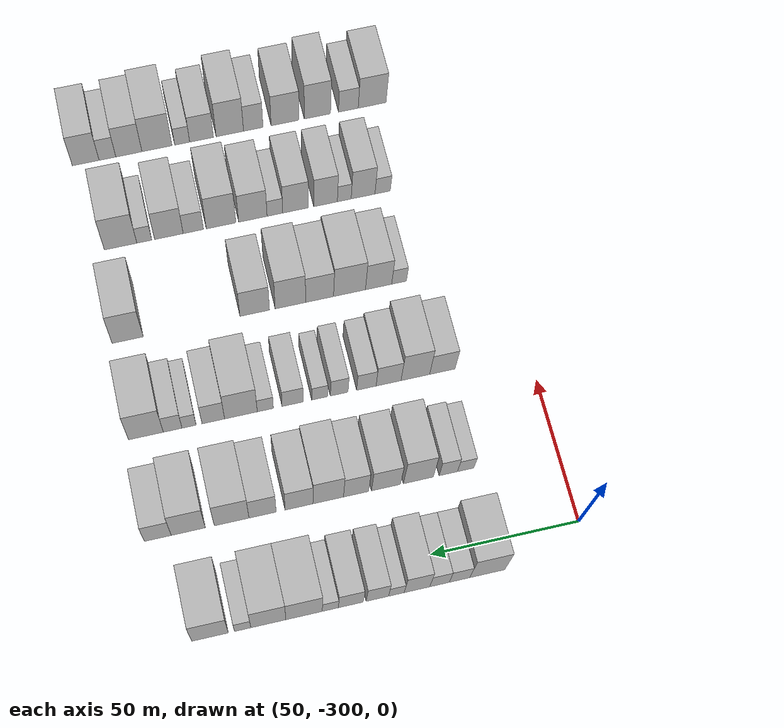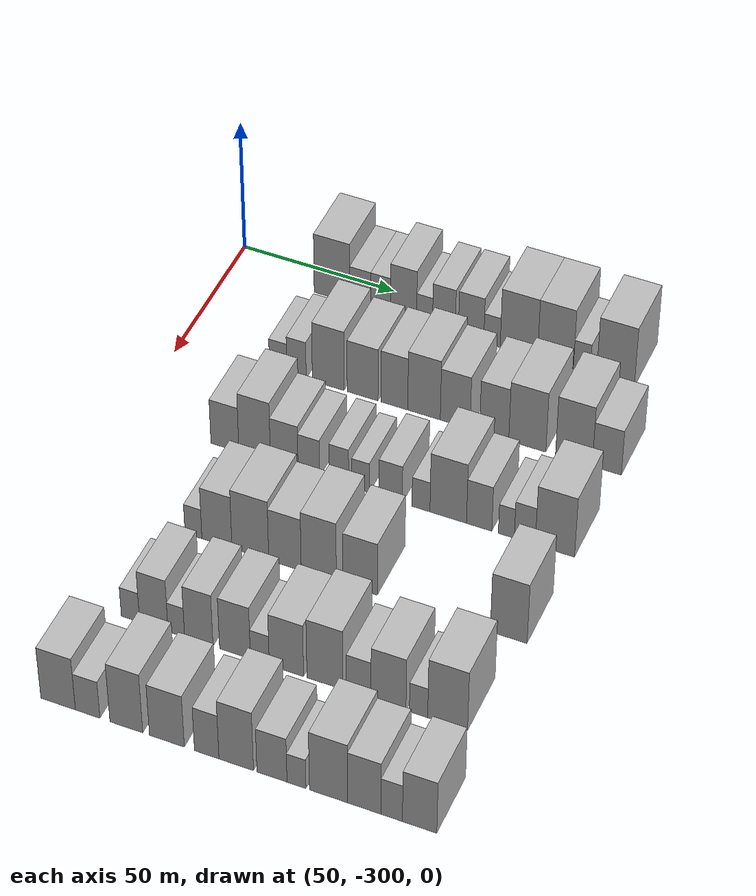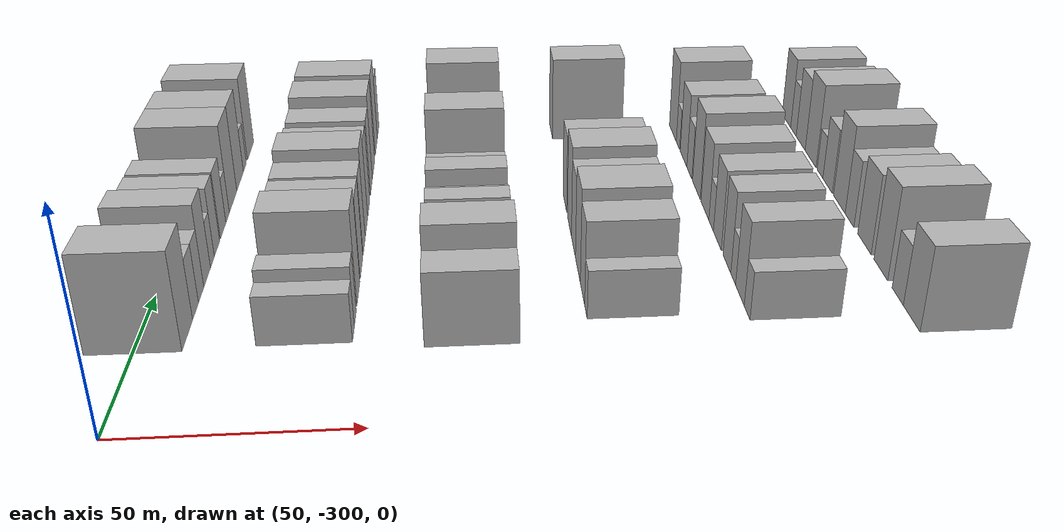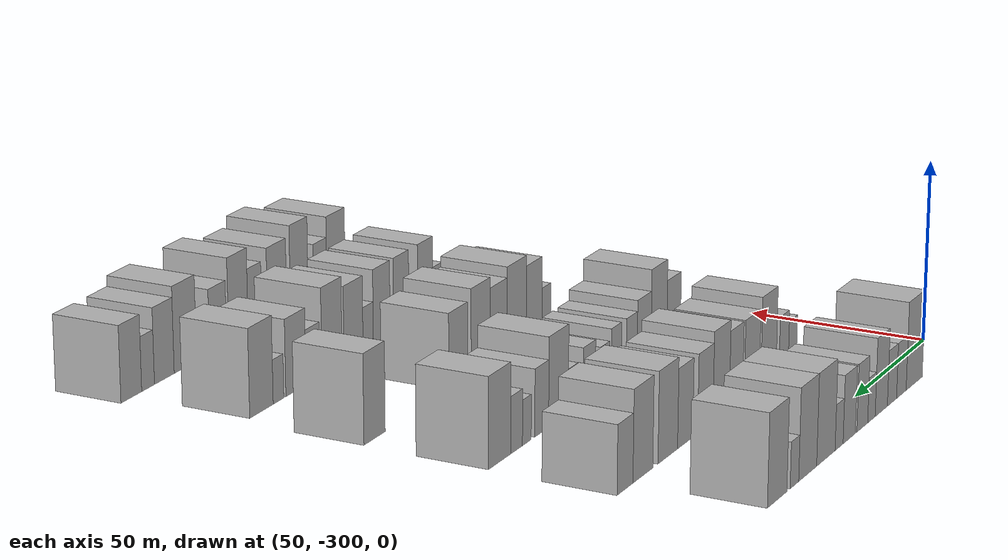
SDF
<sdf version="1.6">
 <world name="default">
  <model name="building_35">
   <static>1</static>
   <pose>50.0000 -266.3294 0 0.000000 0.000000 0.000000</pose>
   <link name="link">
    <pose>0 0 12.00 0 0 0</pose>
    <collision name="collision"><geometry><box><size>20.0000 11.7447 24.0000</size></box></geometry></collision>
    <visual name="visual">
     <cast_shadows>0</cast_shadows>
     <geometry><box><size>20.0000 11.7447 24.0000</size></box></geometry>
     <material>
      <script>
       <uri>model://HANNAS_wall/materials/scripts</uri>
       <uri>model://HANNAS_wall/materials/textures</uri>
       <name>vrc/HANNAS_wall</name>
      </script>
     </material>
    </visual>
   </link>
  </model>
  <model name="building_36">
   <static>1</static>
   <pose>50.0000 -257.0287 0 0.000000 0.000000 0.000000</pose>
   <link name="link">
    <pose>0 0 7.50 0 0 0</pose>
    <collision name="collision"><geometry><box><size>20.0000 6.8566 15.0000</size></box></geometry></collision>
    <visual name="visual">
     <cast_shadows>0</cast_shadows>
     <geometry><box><size>20.0000 6.8566 15.0000</size></box></geometry>
     <material>
      <script>
       <uri>model://HANNAS_wall/materials/scripts</uri>
       <uri>model://HANNAS_wall/materials/textures</uri>
       <name>vrc/HANNAS_wall</name>
      </script>
     </material>
    </visual>
   </link>
  </model>
  <model name="building_37">
   <static>1</static>
   <pose>50.0000 -250.3490 0 0.000000 0.000000 0.000000</pose>
   <link name="link">
    <pose>0 0 7.50 0 0 0</pose>
    <collision name="collision"><geometry><box><size>20.0000 6.5029 15.0000</size></box></geometry></collision>
    <visual name="visual">
     <cast_shadows>0</cast_shadows>
     <geometry><box><size>20.0000 6.5029 15.0000</size></box></geometry>
     <material>
      <script>
       <uri>model://HANNAS_wall/materials/scripts</uri>
       <uri>model://HANNAS_wall/materials/textures</uri>
       <name>vrc/HANNAS_wall</name>
      </script>
     </material>
    </visual>
   </link>
  </model>
  <model name="building_38">
   <static>1</static>
   <pose>50.0000 -242.8320 0 0.000000 0.000000 0.000000</pose>
   <link name="link">
    <pose>0 0 10.50 0 0 0</pose>
    <collision name="collision"><geometry><box><size>20.0000 8.5311 21.0000</size></box></geometry></collision>
    <visual name="visual">
     <cast_shadows>0</cast_shadows>
     <geometry><box><size>20.0000 8.5311 21.0000</size></box></geometry>
     <material>
      <script>
       <uri>model://HANNAS_wall/materials/scripts</uri>
       <uri>model://HANNAS_wall/materials/textures</uri>
       <name>vrc/HANNAS_wall</name>
      </script>
     </material>
    </visual>
   </link>
  </model>
  <model name="building_39">
   <static>1</static>
   <pose>50.0000 -235.9867 0 0.000000 0.000000 0.000000</pose>
   <link name="link">
    <pose>0 0 6.00 0 0 0</pose>
    <collision name="collision"><geometry><box><size>20.0000 5.1596 12.0000</size></box></geometry></collision>
    <visual name="visual">
     <cast_shadows>0</cast_shadows>
     <geometry><box><size>20.0000 5.1596 12.0000</size></box></geometry>
     <material>
      <script>
       <uri>model://HANNAS_wall/materials/scripts</uri>
       <uri>model://HANNAS_wall/materials/textures</uri>
       <name>vrc/HANNAS_wall</name>
      </script>
     </material>
    </visual>
   </link>
  </model>
  <model name="building_40">
   <static>1</static>
   <pose>50.0000 -229.7110 0 0.000000 0.000000 0.000000</pose>
   <link name="link">
    <pose>0 0 9.00 0 0 0</pose>
    <collision name="collision"><geometry><box><size>20.0000 7.3917 18.0000</size></box></geometry></collision>
    <visual name="visual">
     <cast_shadows>0</cast_shadows>
     <geometry><box><size>20.0000 7.3917 18.0000</size></box></geometry>
     <material>
      <script>
       <uri>model://HANNAS_wall/materials/scripts</uri>
       <uri>model://HANNAS_wall/materials/textures</uri>
       <name>vrc/HANNAS_wall</name>
      </script>
     </material>
    </visual>
   </link>
  </model>
  <model name="building_41">
   <static>1</static>
   <pose>50.0000 -220.9175 0 0.000000 0.000000 0.000000</pose>
   <link name="link">
    <pose>0 0 9.00 0 0 0</pose>
    <collision name="collision"><geometry><box><size>20.0000 8.1954 18.0000</size></box></geometry></collision>
    <visual name="visual">
     <cast_shadows>0</cast_shadows>
     <geometry><box><size>20.0000 8.1954 18.0000</size></box></geometry>
     <material>
      <script>
       <uri>model://HANNAS_wall/materials/scripts</uri>
       <uri>model://HANNAS_wall/materials/textures</uri>
       <name>vrc/HANNAS_wall</name>
      </script>
     </material>
    </visual>
   </link>
  </model>
  <model name="building_42">
   <static>1</static>
   <pose>50.0000 -214.1759 0 0.000000 0.000000 0.000000</pose>
   <link name="link">
    <pose>0 0 6.00 0 0 0</pose>
    <collision name="collision"><geometry><box><size>20.0000 5.2878 12.0000</size></box></geometry></collision>
    <visual name="visual">
     <cast_shadows>0</cast_shadows>
     <geometry><box><size>20.0000 5.2878 12.0000</size></box></geometry>
     <material>
      <script>
       <uri>model://HANNAS_wall/materials/scripts</uri>
       <uri>model://HANNAS_wall/materials/textures</uri>
       <name>vrc/HANNAS_wall</name>
      </script>
     </material>
    </visual>
   </link>
  </model>
  <model name="building_43">
   <static>1</static>
   <pose>50.0000 -205.5564 0 0.000000 0.000000 0.000000</pose>
   <link name="link">
    <pose>0 0 12.00 0 0 0</pose>
    <collision name="collision"><geometry><box><size>20.0000 11.9513 24.0000</size></box></geometry></collision>
    <visual name="visual">
     <cast_shadows>0</cast_shadows>
     <geometry><box><size>20.0000 11.9513 24.0000</size></box></geometry>
     <material>
      <script>
       <uri>model://HANNAS_wall/materials/scripts</uri>
       <uri>model://HANNAS_wall/materials/textures</uri>
       <name>vrc/HANNAS_wall</name>
      </script>
     </material>
    </visual>
   </link>
  </model>
  <model name="building_44">
   <static>1</static>
   <pose>50.0000 -193.8797 0 0.000000 0.000000 0.000000</pose>
   <link name="link">
    <pose>0 0 12.00 0 0 0</pose>
    <collision name="collision"><geometry><box><size>20.0000 11.4021 24.0000</size></box></geometry></collision>
    <visual name="visual">
     <cast_shadows>0</cast_shadows>
     <geometry><box><size>20.0000 11.4021 24.0000</size></box></geometry>
     <material>
      <script>
       <uri>model://HANNAS_wall/materials/scripts</uri>
       <uri>model://HANNAS_wall/materials/textures</uri>
       <name>vrc/HANNAS_wall</name>
      </script>
     </material>
    </visual>
   </link>
  </model>
  <model name="building_45">
   <static>1</static>
   <pose>50.0000 -185.5075 0 0.000000 0.000000 0.000000</pose>
   <link name="link">
    <pose>0 0 6.00 0 0 0</pose>
    <collision name="collision"><geometry><box><size>20.0000 5.3423 12.0000</size></box></geometry></collision>
    <visual name="visual">
     <cast_shadows>0</cast_shadows>
     <geometry><box><size>20.0000 5.3423 12.0000</size></box></geometry>
     <material>
      <script>
       <uri>model://HANNAS_wall/materials/scripts</uri>
       <uri>model://HANNAS_wall/materials/textures</uri>
       <name>vrc/HANNAS_wall</name>
      </script>
     </material>
    </visual>
   </link>
  </model>
  <model name="building_46">
   <static>1</static>
   <pose>50.0000 -174.8966 0 0.000000 0.000000 0.000000</pose>
   <link name="link">
    <pose>0 0 12.00 0 0 0</pose>
    <collision name="collision"><geometry><box><size>20.0000 11.8794 24.0000</size></box></geometry></collision>
    <visual name="visual">
     <cast_shadows>0</cast_shadows>
     <geometry><box><size>20.0000 11.8794 24.0000</size></box></geometry>
     <material>
      <script>
       <uri>model://HANNAS_wall/materials/scripts</uri>
       <uri>model://HANNAS_wall/materials/textures</uri>
       <name>vrc/HANNAS_wall</name>
      </script>
     </material>
    </visual>
   </link>
  </model>
  <model name="building_157">
   <static>1</static>
   <pose>85.0000 -268.4667 0 0.000000 0.000000 0.000000</pose>
   <link name="link">
    <pose>0 0 6.00 0 0 0</pose>
    <collision name="collision"><geometry><box><size>20.0000 5.6433 12.0000</size></box></geometry></collision>
    <visual name="visual">
     <cast_shadows>0</cast_shadows>
     <geometry><box><size>20.0000 5.6433 12.0000</size></box></geometry>
     <material>
      <script>
       <uri>model://HANNAS_wall/materials/scripts</uri>
       <uri>model://HANNAS_wall/materials/textures</uri>
       <name>vrc/HANNAS_wall</name>
      </script>
     </material>
    </visual>
   </link>
  </model>
  <model name="building_158">
   <static>1</static>
   <pose>85.0000 -262.5069 0 0.000000 0.000000 0.000000</pose>
   <link name="link">
    <pose>0 0 7.50 0 0 0</pose>
    <collision name="collision"><geometry><box><size>20.0000 6.2764 15.0000</size></box></geometry></collision>
    <visual name="visual">
     <cast_shadows>0</cast_shadows>
     <geometry><box><size>20.0000 6.2764 15.0000</size></box></geometry>
     <material>
      <script>
       <uri>model://HANNAS_wall/materials/scripts</uri>
       <uri>model://HANNAS_wall/materials/textures</uri>
       <name>vrc/HANNAS_wall</name>
      </script>
     </material>
    </visual>
   </link>
  </model>
  <model name="building_159">
   <static>1</static>
   <pose>85.0000 -252.2640 0 0.000000 0.000000 0.000000</pose>
   <link name="link">
    <pose>0 0 12.00 0 0 0</pose>
    <collision name="collision"><geometry><box><size>20.0000 10.2092 24.0000</size></box></geometry></collision>
    <visual name="visual">
     <cast_shadows>0</cast_shadows>
     <geometry><box><size>20.0000 10.2092 24.0000</size></box></geometry>
     <material>
      <script>
       <uri>model://HANNAS_wall/materials/scripts</uri>
       <uri>model://HANNAS_wall/materials/textures</uri>
       <name>vrc/HANNAS_wall</name>
      </script>
     </material>
    </visual>
   </link>
  </model>
  <model name="building_160">
   <static>1</static>
   <pose>85.0000 -241.2254 0 0.000000 0.000000 0.000000</pose>
   <link name="link">
    <pose>0 0 10.50 0 0 0</pose>
    <collision name="collision"><geometry><box><size>20.0000 9.8680 21.0000</size></box></geometry></collision>
    <visual name="visual">
     <cast_shadows>0</cast_shadows>
     <geometry><box><size>20.0000 9.8680 21.0000</size></box></geometry>
     <material>
      <script>
       <uri>model://HANNAS_wall/materials/scripts</uri>
       <uri>model://HANNAS_wall/materials/textures</uri>
       <name>vrc/HANNAS_wall</name>
      </script>
     </material>
    </visual>
   </link>
  </model>
  <model name="building_161">
   <static>1</static>
   <pose>85.0000 -231.0480 0 0.000000 0.000000 0.000000</pose>
   <link name="link">
    <pose>0 0 10.50 0 0 0</pose>
    <collision name="collision"><geometry><box><size>20.0000 8.4869 21.0000</size></box></geometry></collision>
    <visual name="visual">
     <cast_shadows>0</cast_shadows>
     <geometry><box><size>20.0000 8.4869 21.0000</size></box></geometry>
     <material>
      <script>
       <uri>model://HANNAS_wall/materials/scripts</uri>
       <uri>model://HANNAS_wall/materials/textures</uri>
       <name>vrc/HANNAS_wall</name>
      </script>
     </material>
    </visual>
   </link>
  </model>
  <model name="building_162">
   <static>1</static>
   <pose>85.0000 -221.6470 0 0.000000 0.000000 0.000000</pose>
   <link name="link">
    <pose>0 0 12.00 0 0 0</pose>
    <collision name="collision"><geometry><box><size>20.0000 10.3151 24.0000</size></box></geometry></collision>
    <visual name="visual">
     <cast_shadows>0</cast_shadows>
     <geometry><box><size>20.0000 10.3151 24.0000</size></box></geometry>
     <material>
      <script>
       <uri>model://HANNAS_wall/materials/scripts</uri>
       <uri>model://HANNAS_wall/materials/textures</uri>
       <name>vrc/HANNAS_wall</name>
      </script>
     </material>
    </visual>
   </link>
  </model>
  <model name="building_163">
   <static>1</static>
   <pose>85.0000 -211.7996 0 0.000000 0.000000 0.000000</pose>
   <link name="link">
    <pose>0 0 10.50 0 0 0</pose>
    <collision name="collision"><geometry><box><size>20.0000 9.3796 21.0000</size></box></geometry></collision>
    <visual name="visual">
     <cast_shadows>0</cast_shadows>
     <geometry><box><size>20.0000 9.3796 21.0000</size></box></geometry>
     <material>
      <script>
       <uri>model://HANNAS_wall/materials/scripts</uri>
       <uri>model://HANNAS_wall/materials/textures</uri>
       <name>vrc/HANNAS_wall</name>
      </script>
     </material>
    </visual>
   </link>
  </model>
  <model name="building_164">
   <static>1</static>
   <pose>85.0000 -199.5471 0 0.000000 0.000000 0.000000</pose>
   <link name="link">
    <pose>0 0 10.50 0 0 0</pose>
    <collision name="collision"><geometry><box><size>20.0000 9.1254 21.0000</size></box></geometry></collision>
    <visual name="visual">
     <cast_shadows>0</cast_shadows>
     <geometry><box><size>20.0000 9.1254 21.0000</size></box></geometry>
     <material>
      <script>
       <uri>model://HANNAS_wall/materials/scripts</uri>
       <uri>model://HANNAS_wall/materials/textures</uri>
       <name>vrc/HANNAS_wall</name>
      </script>
     </material>
    </visual>
   </link>
  </model>
  <model name="building_165">
   <static>1</static>
   <pose>85.0000 -189.2018 0 0.000000 0.000000 0.000000</pose>
   <link name="link">
    <pose>0 0 12.00 0 0 0</pose>
    <collision name="collision"><geometry><box><size>20.0000 11.5653 24.0000</size></box></geometry></collision>
    <visual name="visual">
     <cast_shadows>0</cast_shadows>
     <geometry><box><size>20.0000 11.5653 24.0000</size></box></geometry>
     <material>
      <script>
       <uri>model://HANNAS_wall/materials/scripts</uri>
       <uri>model://HANNAS_wall/materials/textures</uri>
       <name>vrc/HANNAS_wall</name>
      </script>
     </material>
    </visual>
   </link>
  </model>
  <model name="building_166">
   <static>1</static>
   <pose>85.0000 -174.7429 0 0.000000 0.000000 0.000000</pose>
   <link name="link">
    <pose>0 0 12.00 0 0 0</pose>
    <collision name="collision"><geometry><box><size>20.0000 11.3525 24.0000</size></box></geometry></collision>
    <visual name="visual">
     <cast_shadows>0</cast_shadows>
     <geometry><box><size>20.0000 11.3525 24.0000</size></box></geometry>
     <material>
      <script>
       <uri>model://HANNAS_wall/materials/scripts</uri>
       <uri>model://HANNAS_wall/materials/textures</uri>
       <name>vrc/HANNAS_wall</name>
      </script>
     </material>
    </visual>
   </link>
  </model>
  <model name="building_167">
   <static>1</static>
   <pose>85.0000 -164.6073 0 0.000000 0.000000 0.000000</pose>
   <link name="link">
    <pose>0 0 9.00 0 0 0</pose>
    <collision name="collision"><geometry><box><size>20.0000 8.9186 18.0000</size></box></geometry></collision>
    <visual name="visual">
     <cast_shadows>0</cast_shadows>
     <geometry><box><size>20.0000 8.9186 18.0000</size></box></geometry>
     <material>
      <script>
       <uri>model://HANNAS_wall/materials/scripts</uri>
       <uri>model://HANNAS_wall/materials/textures</uri>
       <name>vrc/HANNAS_wall</name>
      </script>
     </material>
    </visual>
   </link>
  </model>
  <model name="building_281">
   <static>1</static>
   <pose>120.0000 -269.6468 0 0.000000 0.000000 0.000000</pose>
   <link name="link">
    <pose>0 0 9.00 0 0 0</pose>
    <collision name="collision"><geometry><box><size>20.0000 8.9255 18.0000</size></box></geometry></collision>
    <visual name="visual">
     <cast_shadows>0</cast_shadows>
     <geometry><box><size>20.0000 8.9255 18.0000</size></box></geometry>
     <material>
      <script>
       <uri>model://HANNAS_wall/materials/scripts</uri>
       <uri>model://HANNAS_wall/materials/textures</uri>
       <name>vrc/HANNAS_wall</name>
      </script>
     </material>
    </visual>
   </link>
  </model>
  <model name="building_282">
   <static>1</static>
   <pose>120.0000 -260.1610 0 0.000000 0.000000 0.000000</pose>
   <link name="link">
    <pose>0 0 12.00 0 0 0</pose>
    <collision name="collision"><geometry><box><size>20.0000 10.0461 24.0000</size></box></geometry></collision>
    <visual name="visual">
     <cast_shadows>0</cast_shadows>
     <geometry><box><size>20.0000 10.0461 24.0000</size></box></geometry>
     <material>
      <script>
       <uri>model://HANNAS_wall/materials/scripts</uri>
       <uri>model://HANNAS_wall/materials/textures</uri>
       <name>vrc/HANNAS_wall</name>
      </script>
     </material>
    </visual>
   </link>
  </model>
  <model name="building_283">
   <static>1</static>
   <pose>120.0000 -250.7891 0 0.000000 0.000000 0.000000</pose>
   <link name="link">
    <pose>0 0 9.00 0 0 0</pose>
    <collision name="collision"><geometry><box><size>20.0000 8.6977 18.0000</size></box></geometry></collision>
    <visual name="visual">
     <cast_shadows>0</cast_shadows>
     <geometry><box><size>20.0000 8.6977 18.0000</size></box></geometry>
     <material>
      <script>
       <uri>model://HANNAS_wall/materials/scripts</uri>
       <uri>model://HANNAS_wall/materials/textures</uri>
       <name>vrc/HANNAS_wall</name>
      </script>
     </material>
    </visual>
   </link>
  </model>
  <model name="building_284">
   <static>1</static>
   <pose>120.0000 -243.0550 0 0.000000 0.000000 0.000000</pose>
   <link name="link">
    <pose>0 0 7.50 0 0 0</pose>
    <collision name="collision"><geometry><box><size>20.0000 6.7704 15.0000</size></box></geometry></collision>
    <visual name="visual">
     <cast_shadows>0</cast_shadows>
     <geometry><box><size>20.0000 6.7704 15.0000</size></box></geometry>
     <material>
      <script>
       <uri>model://HANNAS_wall/materials/scripts</uri>
       <uri>model://HANNAS_wall/materials/textures</uri>
       <name>vrc/HANNAS_wall</name>
      </script>
     </material>
    </visual>
   </link>
  </model>
  <model name="building_285">
   <static>1</static>
   <pose>120.0000 -233.6091 0 0.000000 0.000000 0.000000</pose>
   <link name="link">
    <pose>0 0 7.50 0 0 0</pose>
    <collision name="collision"><geometry><box><size>20.0000 6.1214 15.0000</size></box></geometry></collision>
    <visual name="visual">
     <cast_shadows>0</cast_shadows>
     <geometry><box><size>20.0000 6.1214 15.0000</size></box></geometry>
     <material>
      <script>
       <uri>model://HANNAS_wall/materials/scripts</uri>
       <uri>model://HANNAS_wall/materials/textures</uri>
       <name>vrc/HANNAS_wall</name>
      </script>
     </material>
    </visual>
   </link>
  </model>
  <model name="building_286">
   <static>1</static>
   <pose>120.0000 -226.8102 0 0.000000 0.000000 0.000000</pose>
   <link name="link">
    <pose>0 0 6.00 0 0 0</pose>
    <collision name="collision"><geometry><box><size>20.0000 5.4764 12.0000</size></box></geometry></collision>
    <visual name="visual">
     <cast_shadows>0</cast_shadows>
     <geometry><box><size>20.0000 5.4764 12.0000</size></box></geometry>
     <material>
      <script>
       <uri>model://HANNAS_wall/materials/scripts</uri>
       <uri>model://HANNAS_wall/materials/textures</uri>
       <name>vrc/HANNAS_wall</name>
      </script>
     </material>
    </visual>
   </link>
  </model>
  <model name="building_287">
   <static>1</static>
   <pose>120.0000 -217.4553 0 0.000000 0.000000 0.000000</pose>
   <link name="link">
    <pose>0 0 7.50 0 0 0</pose>
    <collision name="collision"><geometry><box><size>20.0000 7.2334 15.0000</size></box></geometry></collision>
    <visual name="visual">
     <cast_shadows>0</cast_shadows>
     <geometry><box><size>20.0000 7.2334 15.0000</size></box></geometry>
     <material>
      <script>
       <uri>model://HANNAS_wall/materials/scripts</uri>
       <uri>model://HANNAS_wall/materials/textures</uri>
       <name>vrc/HANNAS_wall</name>
      </script>
     </material>
    </visual>
   </link>
  </model>
  <model name="building_288">
   <static>1</static>
   <pose>120.0000 -208.0695 0 0.000000 0.000000 0.000000</pose>
   <link name="link">
    <pose>0 0 6.00 0 0 0</pose>
    <collision name="collision"><geometry><box><size>20.0000 5.5383 12.0000</size></box></geometry></collision>
    <visual name="visual">
     <cast_shadows>0</cast_shadows>
     <geometry><box><size>20.0000 5.5383 12.0000</size></box></geometry>
     <material>
      <script>
       <uri>model://HANNAS_wall/materials/scripts</uri>
       <uri>model://HANNAS_wall/materials/textures</uri>
       <name>vrc/HANNAS_wall</name>
      </script>
     </material>
    </visual>
   </link>
  </model>
  <model name="building_289">
   <static>1</static>
   <pose>120.0000 -199.6858 0 0.000000 0.000000 0.000000</pose>
   <link name="link">
    <pose>0 0 12.00 0 0 0</pose>
    <collision name="collision"><geometry><box><size>20.0000 11.2291 24.0000</size></box></geometry></collision>
    <visual name="visual">
     <cast_shadows>0</cast_shadows>
     <geometry><box><size>20.0000 11.2291 24.0000</size></box></geometry>
     <material>
      <script>
       <uri>model://HANNAS_wall/materials/scripts</uri>
       <uri>model://HANNAS_wall/materials/textures</uri>
       <name>vrc/HANNAS_wall</name>
      </script>
     </material>
    </visual>
   </link>
  </model>
  <model name="building_290">
   <static>1</static>
   <pose>120.0000 -190.2010 0 0.000000 0.000000 0.000000</pose>
   <link name="link">
    <pose>0 0 9.00 0 0 0</pose>
    <collision name="collision"><geometry><box><size>20.0000 7.7405 18.0000</size></box></geometry></collision>
    <visual name="visual">
     <cast_shadows>0</cast_shadows>
     <geometry><box><size>20.0000 7.7405 18.0000</size></box></geometry>
     <material>
      <script>
       <uri>model://HANNAS_wall/materials/scripts</uri>
       <uri>model://HANNAS_wall/materials/textures</uri>
       <name>vrc/HANNAS_wall</name>
      </script>
     </material>
    </visual>
   </link>
  </model>
  <model name="building_291">
   <static>1</static>
   <pose>120.0000 -181.9193 0 0.000000 0.000000 0.000000</pose>
   <link name="link">
    <pose>0 0 6.00 0 0 0</pose>
    <collision name="collision"><geometry><box><size>20.0000 4.8228 12.0000</size></box></geometry></collision>
    <visual name="visual">
     <cast_shadows>0</cast_shadows>
     <geometry><box><size>20.0000 4.8228 12.0000</size></box></geometry>
     <material>
      <script>
       <uri>model://HANNAS_wall/materials/scripts</uri>
       <uri>model://HANNAS_wall/materials/textures</uri>
       <name>vrc/HANNAS_wall</name>
      </script>
     </material>
    </visual>
   </link>
  </model>
  <model name="building_292">
   <static>1</static>
   <pose>120.0000 -176.3178 0 0.000000 0.000000 0.000000</pose>
   <link name="link">
    <pose>0 0 7.50 0 0 0</pose>
    <collision name="collision"><geometry><box><size>20.0000 6.3802 15.0000</size></box></geometry></collision>
    <visual name="visual">
     <cast_shadows>0</cast_shadows>
     <geometry><box><size>20.0000 6.3802 15.0000</size></box></geometry>
     <material>
      <script>
       <uri>model://HANNAS_wall/materials/scripts</uri>
       <uri>model://HANNAS_wall/materials/textures</uri>
       <name>vrc/HANNAS_wall</name>
      </script>
     </material>
    </visual>
   </link>
  </model>
  <model name="building_293">
   <static>1</static>
   <pose>120.0000 -167.2081 0 0.000000 0.000000 0.000000</pose>
   <link name="link">
    <pose>0 0 12.00 0 0 0</pose>
    <collision name="collision"><geometry><box><size>20.0000 11.8393 24.0000</size></box></geometry></collision>
    <visual name="visual">
     <cast_shadows>0</cast_shadows>
     <geometry><box><size>20.0000 11.8393 24.0000</size></box></geometry>
     <material>
      <script>
       <uri>model://HANNAS_wall/materials/scripts</uri>
       <uri>model://HANNAS_wall/materials/textures</uri>
       <name>vrc/HANNAS_wall</name>
      </script>
     </material>
    </visual>
   </link>
  </model>
  <model name="building_409">
   <static>1</static>
   <pose>155.0000 -263.2362 0 0.000000 0.000000 0.000000</pose>
   <link name="link">
    <pose>0 0 6.00 0 0 0</pose>
    <collision name="collision"><geometry><box><size>20.0000 5.2868 12.0000</size></box></geometry></collision>
    <visual name="visual">
     <cast_shadows>0</cast_shadows>
     <geometry><box><size>20.0000 5.2868 12.0000</size></box></geometry>
     <material>
      <script>
       <uri>model://HANNAS_wall/materials/scripts</uri>
       <uri>model://HANNAS_wall/materials/textures</uri>
       <name>vrc/HANNAS_wall</name>
      </script>
     </material>
    </visual>
   </link>
  </model>
  <model name="building_410">
   <static>1</static>
   <pose>155.0000 -255.9141 0 0.000000 0.000000 0.000000</pose>
   <link name="link">
    <pose>0 0 10.50 0 0 0</pose>
    <collision name="collision"><geometry><box><size>20.0000 9.3574 21.0000</size></box></geometry></collision>
    <visual name="visual">
     <cast_shadows>0</cast_shadows>
     <geometry><box><size>20.0000 9.3574 21.0000</size></box></geometry>
     <material>
      <script>
       <uri>model://HANNAS_wall/materials/scripts</uri>
       <uri>model://HANNAS_wall/materials/textures</uri>
       <name>vrc/HANNAS_wall</name>
      </script>
     </material>
    </visual>
   </link>
  </model>
  <model name="building_411">
   <static>1</static>
   <pose>155.0000 -245.5394 0 0.000000 0.000000 0.000000</pose>
   <link name="link">
    <pose>0 0 12.00 0 0 0</pose>
    <collision name="collision"><geometry><box><size>20.0000 11.3920 24.0000</size></box></geometry></collision>
    <visual name="visual">
     <cast_shadows>0</cast_shadows>
     <geometry><box><size>20.0000 11.3920 24.0000</size></box></geometry>
     <material>
      <script>
       <uri>model://HANNAS_wall/materials/scripts</uri>
       <uri>model://HANNAS_wall/materials/textures</uri>
       <name>vrc/HANNAS_wall</name>
      </script>
     </material>
    </visual>
   </link>
  </model>
  <model name="building_412">
   <static>1</static>
   <pose>155.0000 -234.8505 0 0.000000 0.000000 0.000000</pose>
   <link name="link">
    <pose>0 0 10.50 0 0 0</pose>
    <collision name="collision"><geometry><box><size>20.0000 9.9858 21.0000</size></box></geometry></collision>
    <visual name="visual">
     <cast_shadows>0</cast_shadows>
     <geometry><box><size>20.0000 9.9858 21.0000</size></box></geometry>
     <material>
      <script>
       <uri>model://HANNAS_wall/materials/scripts</uri>
       <uri>model://HANNAS_wall/materials/textures</uri>
       <name>vrc/HANNAS_wall</name>
      </script>
     </material>
    </visual>
   </link>
  </model>
  <model name="building_413">
   <static>1</static>
   <pose>155.0000 -224.4941 0 0.000000 0.000000 0.000000</pose>
   <link name="link">
    <pose>0 0 12.00 0 0 0</pose>
    <collision name="collision"><geometry><box><size>20.0000 10.7269 24.0000</size></box></geometry></collision>
    <visual name="visual">
     <cast_shadows>0</cast_shadows>
     <geometry><box><size>20.0000 10.7269 24.0000</size></box></geometry>
     <material>
      <script>
       <uri>model://HANNAS_wall/materials/scripts</uri>
       <uri>model://HANNAS_wall/materials/textures</uri>
       <name>vrc/HANNAS_wall</name>
      </script>
     </material>
    </visual>
   </link>
  </model>
  <model name="building_414">
   <static>1</static>
   <pose>155.0000 -211.9144 0 0.000000 0.000000 0.000000</pose>
   <link name="link">
    <pose>0 0 10.50 0 0 0</pose>
    <collision name="collision"><geometry><box><size>20.0000 10.4326 21.0000</size></box></geometry></collision>
    <visual name="visual">
     <cast_shadows>0</cast_shadows>
     <geometry><box><size>20.0000 10.4326 21.0000</size></box></geometry>
     <material>
      <script>
       <uri>model://HANNAS_wall/materials/scripts</uri>
       <uri>model://HANNAS_wall/materials/textures</uri>
       <name>vrc/HANNAS_wall</name>
      </script>
     </material>
    </visual>
   </link>
  </model>
  <model name="building_415">
   <static>1</static>
   <pose>155.0000 -167.3942 0 0.000000 0.000000 0.000000</pose>
   <link name="link">
    <pose>0 0 12.00 0 0 0</pose>
    <collision name="collision"><geometry><box><size>20.0000 10.8693 24.0000</size></box></geometry></collision>
    <visual name="visual">
     <cast_shadows>0</cast_shadows>
     <geometry><box><size>20.0000 10.8693 24.0000</size></box></geometry>
     <material>
      <script>
       <uri>model://HANNAS_wall/materials/scripts</uri>
       <uri>model://HANNAS_wall/materials/textures</uri>
       <name>vrc/HANNAS_wall</name>
      </script>
     </material>
    </visual>
   </link>
  </model>
  <model name="building_530">
   <static>1</static>
   <pose>190.0000 -265.9991 0 0.000000 0.000000 0.000000</pose>
   <link name="link">
    <pose>0 0 6.00 0 0 0</pose>
    <collision name="collision"><geometry><box><size>20.0000 5.6061 12.0000</size></box></geometry></collision>
    <visual name="visual">
     <cast_shadows>0</cast_shadows>
     <geometry><box><size>20.0000 5.6061 12.0000</size></box></geometry>
     <material>
      <script>
       <uri>model://HANNAS_wall/materials/scripts</uri>
       <uri>model://HANNAS_wall/materials/textures</uri>
       <name>vrc/HANNAS_wall</name>
      </script>
     </material>
    </visual>
   </link>
  </model>
  <model name="building_531">
   <static>1</static>
   <pose>190.0000 -258.8381 0 0.000000 0.000000 0.000000</pose>
   <link name="link">
    <pose>0 0 10.50 0 0 0</pose>
    <collision name="collision"><geometry><box><size>20.0000 8.7160 21.0000</size></box></geometry></collision>
    <visual name="visual">
     <cast_shadows>0</cast_shadows>
     <geometry><box><size>20.0000 8.7160 21.0000</size></box></geometry>
     <material>
      <script>
       <uri>model://HANNAS_wall/materials/scripts</uri>
       <uri>model://HANNAS_wall/materials/textures</uri>
       <name>vrc/HANNAS_wall</name>
      </script>
     </material>
    </visual>
   </link>
  </model>
  <model name="building_532">
   <static>1</static>
   <pose>190.0000 -251.9561 0 0.000000 0.000000 0.000000</pose>
   <link name="link">
    <pose>0 0 6.00 0 0 0</pose>
    <collision name="collision"><geometry><box><size>20.0000 5.0481 12.0000</size></box></geometry></collision>
    <visual name="visual">
     <cast_shadows>0</cast_shadows>
     <geometry><box><size>20.0000 5.0481 12.0000</size></box></geometry>
     <material>
      <script>
       <uri>model://HANNAS_wall/materials/scripts</uri>
       <uri>model://HANNAS_wall/materials/textures</uri>
       <name>vrc/HANNAS_wall</name>
      </script>
     </material>
    </visual>
   </link>
  </model>
  <model name="building_533">
   <static>1</static>
   <pose>190.0000 -245.1245 0 0.000000 0.000000 0.000000</pose>
   <link name="link">
    <pose>0 0 10.50 0 0 0</pose>
    <collision name="collision"><geometry><box><size>20.0000 8.6150 21.0000</size></box></geometry></collision>
    <visual name="visual">
     <cast_shadows>0</cast_shadows>
     <geometry><box><size>20.0000 8.6150 21.0000</size></box></geometry>
     <material>
      <script>
       <uri>model://HANNAS_wall/materials/scripts</uri>
       <uri>model://HANNAS_wall/materials/textures</uri>
       <name>vrc/HANNAS_wall</name>
      </script>
     </material>
    </visual>
   </link>
  </model>
  <model name="building_534">
   <static>1</static>
   <pose>190.0000 -234.1746 0 0.000000 0.000000 0.000000</pose>
   <link name="link">
    <pose>0 0 10.50 0 0 0</pose>
    <collision name="collision"><geometry><box><size>20.0000 9.2848 21.0000</size></box></geometry></collision>
    <visual name="visual">
     <cast_shadows>0</cast_shadows>
     <geometry><box><size>20.0000 9.2848 21.0000</size></box></geometry>
     <material>
      <script>
       <uri>model://HANNAS_wall/materials/scripts</uri>
       <uri>model://HANNAS_wall/materials/textures</uri>
       <name>vrc/HANNAS_wall</name>
      </script>
     </material>
    </visual>
   </link>
  </model>
  <model name="building_535">
   <static>1</static>
   <pose>190.0000 -226.7036 0 0.000000 0.000000 0.000000</pose>
   <link name="link">
    <pose>0 0 6.00 0 0 0</pose>
    <collision name="collision"><geometry><box><size>20.0000 5.6573 12.0000</size></box></geometry></collision>
    <visual name="visual">
     <cast_shadows>0</cast_shadows>
     <geometry><box><size>20.0000 5.6573 12.0000</size></box></geometry>
     <material>
      <script>
       <uri>model://HANNAS_wall/materials/scripts</uri>
       <uri>model://HANNAS_wall/materials/textures</uri>
       <name>vrc/HANNAS_wall</name>
      </script>
     </material>
    </visual>
   </link>
  </model>
  <model name="building_536">
   <static>1</static>
   <pose>190.0000 -218.7456 0 0.000000 0.000000 0.000000</pose>
   <link name="link">
    <pose>0 0 10.50 0 0 0</pose>
    <collision name="collision"><geometry><box><size>20.0000 10.2587 21.0000</size></box></geometry></collision>
    <visual name="visual">
     <cast_shadows>0</cast_shadows>
     <geometry><box><size>20.0000 10.2587 21.0000</size></box></geometry>
     <material>
      <script>
       <uri>model://HANNAS_wall/materials/scripts</uri>
       <uri>model://HANNAS_wall/materials/textures</uri>
       <name>vrc/HANNAS_wall</name>
      </script>
     </material>
    </visual>
   </link>
  </model>
  <model name="building_537">
   <static>1</static>
   <pose>190.0000 -207.2745 0 0.000000 0.000000 0.000000</pose>
   <link name="link">
    <pose>0 0 12.00 0 0 0</pose>
    <collision name="collision"><geometry><box><size>20.0000 10.6834 24.0000</size></box></geometry></collision>
    <visual name="visual">
     <cast_shadows>0</cast_shadows>
     <geometry><box><size>20.0000 10.6834 24.0000</size></box></geometry>
     <material>
      <script>
       <uri>model://HANNAS_wall/materials/scripts</uri>
       <uri>model://HANNAS_wall/materials/textures</uri>
       <name>vrc/HANNAS_wall</name>
      </script>
     </material>
    </visual>
   </link>
  </model>
  <model name="building_538">
   <static>1</static>
   <pose>190.0000 -197.2865 0 0.000000 0.000000 0.000000</pose>
   <link name="link">
    <pose>0 0 7.50 0 0 0</pose>
    <collision name="collision"><geometry><box><size>20.0000 7.2927 15.0000</size></box></geometry></collision>
    <visual name="visual">
     <cast_shadows>0</cast_shadows>
     <geometry><box><size>20.0000 7.2927 15.0000</size></box></geometry>
     <material>
      <script>
       <uri>model://HANNAS_wall/materials/scripts</uri>
       <uri>model://HANNAS_wall/materials/textures</uri>
       <name>vrc/HANNAS_wall</name>
      </script>
     </material>
    </visual>
   </link>
  </model>
  <model name="building_539">
   <static>1</static>
   <pose>190.0000 -188.5120 0 0.000000 0.000000 0.000000</pose>
   <link name="link">
    <pose>0 0 10.50 0 0 0</pose>
    <collision name="collision"><geometry><box><size>20.0000 10.2561 21.0000</size></box></geometry></collision>
    <visual name="visual">
     <cast_shadows>0</cast_shadows>
     <geometry><box><size>20.0000 10.2561 21.0000</size></box></geometry>
     <material>
      <script>
       <uri>model://HANNAS_wall/materials/scripts</uri>
       <uri>model://HANNAS_wall/materials/textures</uri>
       <name>vrc/HANNAS_wall</name>
      </script>
     </material>
    </visual>
   </link>
  </model>
  <model name="building_540">
   <static>1</static>
   <pose>190.0000 -179.7095 0 0.000000 0.000000 0.000000</pose>
   <link name="link">
    <pose>0 0 6.00 0 0 0</pose>
    <collision name="collision"><geometry><box><size>20.0000 5.3489 12.0000</size></box></geometry></collision>
    <visual name="visual">
     <cast_shadows>0</cast_shadows>
     <geometry><box><size>20.0000 5.3489 12.0000</size></box></geometry>
     <material>
      <script>
       <uri>model://HANNAS_wall/materials/scripts</uri>
       <uri>model://HANNAS_wall/materials/textures</uri>
       <name>vrc/HANNAS_wall</name>
      </script>
     </material>
    </visual>
   </link>
  </model>
  <model name="building_541">
   <static>1</static>
   <pose>190.0000 -171.2456 0 0.000000 0.000000 0.000000</pose>
   <link name="link">
    <pose>0 0 12.00 0 0 0</pose>
    <collision name="collision"><geometry><box><size>20.0000 11.5791 24.0000</size></box></geometry></collision>
    <visual name="visual">
     <cast_shadows>0</cast_shadows>
     <geometry><box><size>20.0000 11.5791 24.0000</size></box></geometry>
     <material>
      <script>
       <uri>model://HANNAS_wall/materials/scripts</uri>
       <uri>model://HANNAS_wall/materials/textures</uri>
       <name>vrc/HANNAS_wall</name>
      </script>
     </material>
    </visual>
   </link>
  </model>
  <model name="building_655">
   <static>1</static>
   <pose>225.0000 -270.6860 0 0.000000 0.000000 0.000000</pose>
   <link name="link">
    <pose>0 0 10.50 0 0 0</pose>
    <collision name="collision"><geometry><box><size>20.0000 10.4190 21.0000</size></box></geometry></collision>
    <visual name="visual">
     <cast_shadows>0</cast_shadows>
     <geometry><box><size>20.0000 10.4190 21.0000</size></box></geometry>
     <material>
      <script>
       <uri>model://HANNAS_wall/materials/scripts</uri>
       <uri>model://HANNAS_wall/materials/textures</uri>
       <name>vrc/HANNAS_wall</name>
      </script>
     </material>
    </visual>
   </link>
  </model>
  <model name="building_656">
   <static>1</static>
   <pose>225.0000 -261.7863 0 0.000000 0.000000 0.000000</pose>
   <link name="link">
    <pose>0 0 7.50 0 0 0</pose>
    <collision name="collision"><geometry><box><size>20.0000 7.3803 15.0000</size></box></geometry></collision>
    <visual name="visual">
     <cast_shadows>0</cast_shadows>
     <geometry><box><size>20.0000 7.3803 15.0000</size></box></geometry>
     <material>
      <script>
       <uri>model://HANNAS_wall/materials/scripts</uri>
       <uri>model://HANNAS_wall/materials/textures</uri>
       <name>vrc/HANNAS_wall</name>
      </script>
     </material>
    </visual>
   </link>
  </model>
  <model name="building_657">
   <static>1</static>
   <pose>225.0000 -250.1952 0 0.000000 0.000000 0.000000</pose>
   <link name="link">
    <pose>0 0 12.00 0 0 0</pose>
    <collision name="collision"><geometry><box><size>20.0000 9.8019 24.0000</size></box></geometry></collision>
    <visual name="visual">
     <cast_shadows>0</cast_shadows>
     <geometry><box><size>20.0000 9.8019 24.0000</size></box></geometry>
     <material>
      <script>
       <uri>model://HANNAS_wall/materials/scripts</uri>
       <uri>model://HANNAS_wall/materials/textures</uri>
       <name>vrc/HANNAS_wall</name>
      </script>
     </material>
    </visual>
   </link>
  </model>
  <model name="building_658">
   <static>1</static>
   <pose>225.0000 -238.1296 0 0.000000 0.000000 0.000000</pose>
   <link name="link">
    <pose>0 0 10.50 0 0 0</pose>
    <collision name="collision"><geometry><box><size>20.0000 10.3294 21.0000</size></box></geometry></collision>
    <visual name="visual">
     <cast_shadows>0</cast_shadows>
     <geometry><box><size>20.0000 10.3294 21.0000</size></box></geometry>
     <material>
      <script>
       <uri>model://HANNAS_wall/materials/scripts</uri>
       <uri>model://HANNAS_wall/materials/textures</uri>
       <name>vrc/HANNAS_wall</name>
      </script>
     </material>
    </visual>
   </link>
  </model>
  <model name="building_659">
   <static>1</static>
   <pose>225.0000 -226.3615 0 0.000000 0.000000 0.000000</pose>
   <link name="link">
    <pose>0 0 9.00 0 0 0</pose>
    <collision name="collision"><geometry><box><size>20.0000 7.2068 18.0000</size></box></geometry></collision>
    <visual name="visual">
     <cast_shadows>0</cast_shadows>
     <geometry><box><size>20.0000 7.2068 18.0000</size></box></geometry>
     <material>
      <script>
       <uri>model://HANNAS_wall/materials/scripts</uri>
       <uri>model://HANNAS_wall/materials/textures</uri>
       <name>vrc/HANNAS_wall</name>
      </script>
     </material>
    </visual>
   </link>
  </model>
  <model name="building_660">
   <static>1</static>
   <pose>225.0000 -217.7010 0 0.000000 0.000000 0.000000</pose>
   <link name="link">
    <pose>0 0 12.00 0 0 0</pose>
    <collision name="collision"><geometry><box><size>20.0000 10.1142 24.0000</size></box></geometry></collision>
    <visual name="visual">
     <cast_shadows>0</cast_shadows>
     <geometry><box><size>20.0000 10.1142 24.0000</size></box></geometry>
     <material>
      <script>
       <uri>model://HANNAS_wall/materials/scripts</uri>
       <uri>model://HANNAS_wall/materials/textures</uri>
       <name>vrc/HANNAS_wall</name>
      </script>
     </material>
    </visual>
   </link>
  </model>
  <model name="building_661">
   <static>1</static>
   <pose>225.0000 -207.2661 0 0.000000 0.000000 0.000000</pose>
   <link name="link">
    <pose>0 0 9.00 0 0 0</pose>
    <collision name="collision"><geometry><box><size>20.0000 8.7556 18.0000</size></box></geometry></collision>
    <visual name="visual">
     <cast_shadows>0</cast_shadows>
     <geometry><box><size>20.0000 8.7556 18.0000</size></box></geometry>
     <material>
      <script>
       <uri>model://HANNAS_wall/materials/scripts</uri>
       <uri>model://HANNAS_wall/materials/textures</uri>
       <name>vrc/HANNAS_wall</name>
      </script>
     </material>
    </visual>
   </link>
  </model>
  <model name="building_662">
   <static>1</static>
   <pose>225.0000 -200.1380 0 0.000000 0.000000 0.000000</pose>
   <link name="link">
    <pose>0 0 6.00 0 0 0</pose>
    <collision name="collision"><geometry><box><size>20.0000 5.5006 12.0000</size></box></geometry></collision>
    <visual name="visual">
     <cast_shadows>0</cast_shadows>
     <geometry><box><size>20.0000 5.5006 12.0000</size></box></geometry>
     <material>
      <script>
       <uri>model://HANNAS_wall/materials/scripts</uri>
       <uri>model://HANNAS_wall/materials/textures</uri>
       <name>vrc/HANNAS_wall</name>
      </script>
     </material>
    </visual>
   </link>
  </model>
  <model name="building_663">
   <static>1</static>
   <pose>225.0000 -190.8780 0 0.000000 0.000000 0.000000</pose>
   <link name="link">
    <pose>0 0 12.00 0 0 0</pose>
    <collision name="collision"><geometry><box><size>20.0000 11.0194 24.0000</size></box></geometry></collision>
    <visual name="visual">
     <cast_shadows>0</cast_shadows>
     <geometry><box><size>20.0000 11.0194 24.0000</size></box></geometry>
     <material>
      <script>
       <uri>model://HANNAS_wall/materials/scripts</uri>
       <uri>model://HANNAS_wall/materials/textures</uri>
       <name>vrc/HANNAS_wall</name>
      </script>
     </material>
    </visual>
   </link>
  </model>
  <model name="building_664">
   <static>1</static>
   <pose>225.0000 -180.5954 0 0.000000 0.000000 0.000000</pose>
   <link name="link">
    <pose>0 0 10.50 0 0 0</pose>
    <collision name="collision"><geometry><box><size>20.0000 9.5458 21.0000</size></box></geometry></collision>
    <visual name="visual">
     <cast_shadows>0</cast_shadows>
     <geometry><box><size>20.0000 9.5458 21.0000</size></box></geometry>
     <material>
      <script>
       <uri>model://HANNAS_wall/materials/scripts</uri>
       <uri>model://HANNAS_wall/materials/textures</uri>
       <name>vrc/HANNAS_wall</name>
      </script>
     </material>
    </visual>
   </link>
  </model>
  <model name="building_665">
   <static>1</static>
   <pose>225.0000 -172.7763 0 0.000000 0.000000 0.000000</pose>
   <link name="link">
    <pose>0 0 7.50 0 0 0</pose>
    <collision name="collision"><geometry><box><size>20.0000 6.0924 15.0000</size></box></geometry></collision>
    <visual name="visual">
     <cast_shadows>0</cast_shadows>
     <geometry><box><size>20.0000 6.0924 15.0000</size></box></geometry>
     <material>
      <script>
       <uri>model://HANNAS_wall/materials/scripts</uri>
       <uri>model://HANNAS_wall/materials/textures</uri>
       <name>vrc/HANNAS_wall</name>
      </script>
     </material>
    </visual>
   </link>
  </model>
  <model name="building_666">
   <static>1</static>
   <pose>225.0000 -164.8526 0 0.000000 0.000000 0.000000</pose>
   <link name="link">
    <pose>0 0 10.50 0 0 0</pose>
    <collision name="collision"><geometry><box><size>20.0000 9.7551 21.0000</size></box></geometry></collision>
    <visual name="visual">
     <cast_shadows>0</cast_shadows>
     <geometry><box><size>20.0000 9.7551 21.0000</size></box></geometry>
     <material>
      <script>
       <uri>model://HANNAS_wall/materials/scripts</uri>
       <uri>model://HANNAS_wall/materials/textures</uri>
       <name>vrc/HANNAS_wall</name>
      </script>
     </material>
    </visual>
   </link>
  </model>
 </world>
</sdf>
